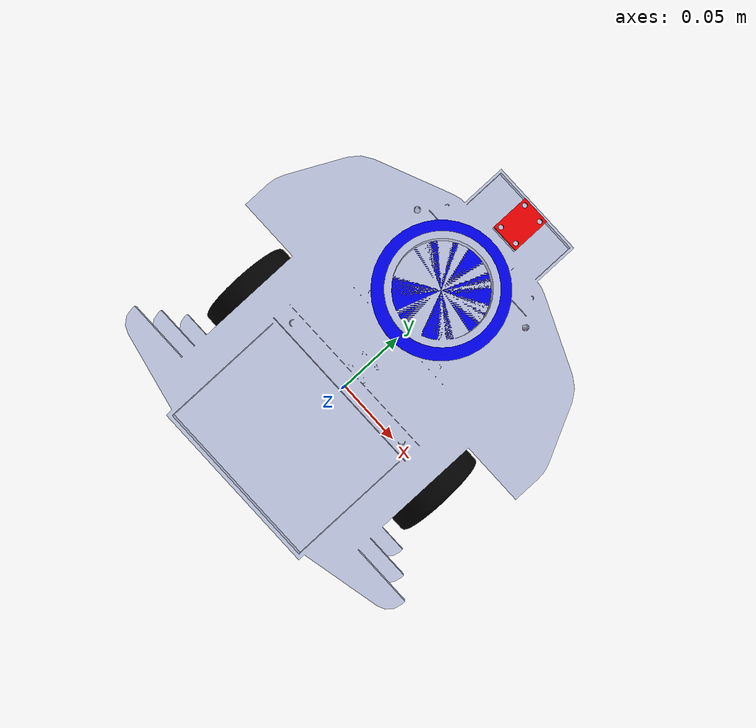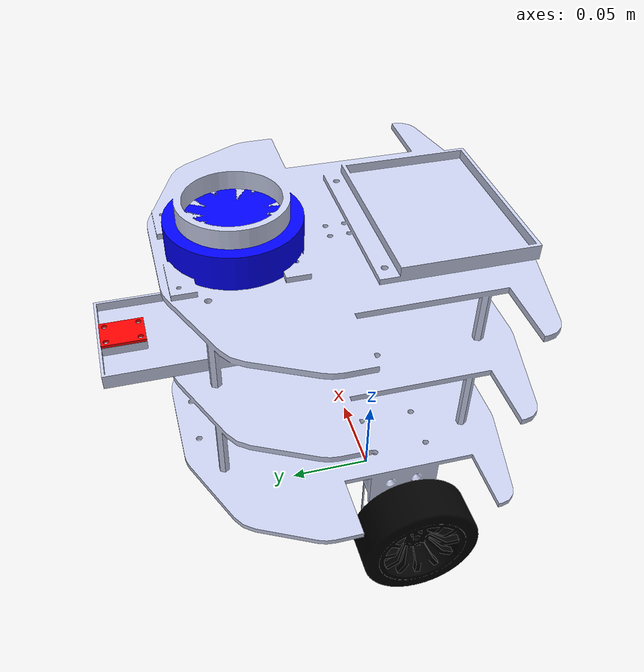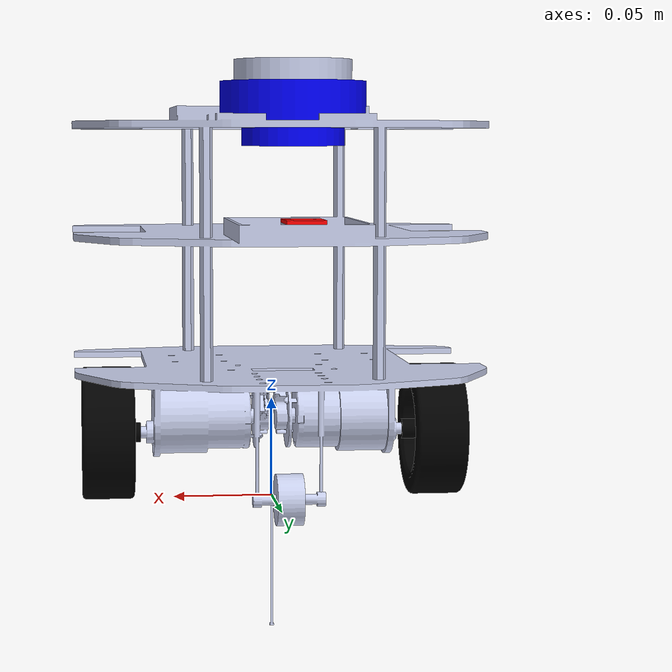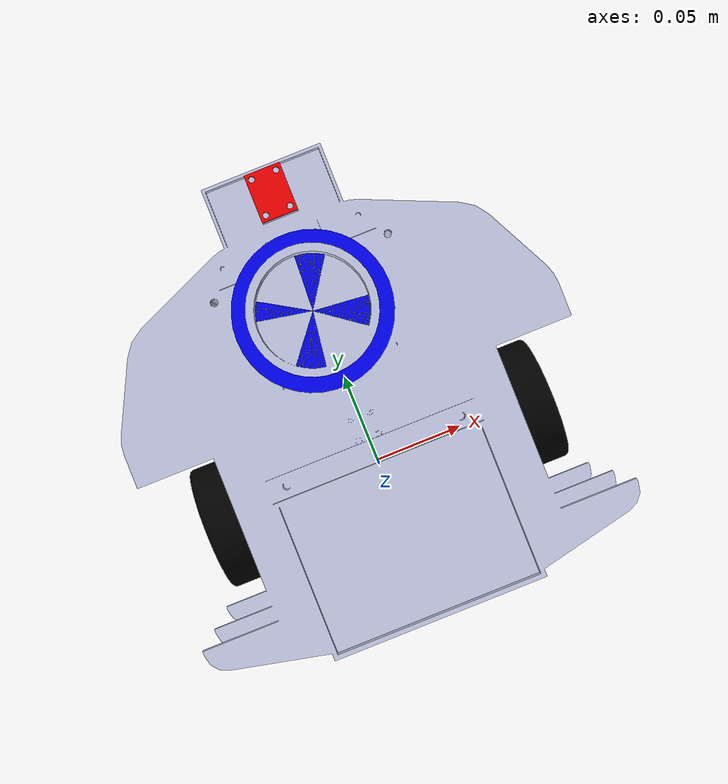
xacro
<?xml version="1.0" encoding="utf-8"?>
<robot
  name="wheel_chair_robot">

  <link
    name="base_footprint">
    <inertial>
      <origin
        xyz="5.41034890439227E-20 2.2865873310991E-18 -0.0353753976311337"
        rpy="0 0 0" />
      <mass
        value="7.09200000000001E-05" />
      <inertia
        ixx="2.93340926097869E-08"
        ixy="-3.85037082822614E-27"
        ixz="3.60459939671844E-27"
        iyy="2.93340926097869E-08"
        iyz="1.84769596144008E-24"
        izz="1.382E-11" />
    </inertial>
    <visual>
      <origin
        xyz="0 0 0"
        rpy="0 0 0" />
      <geometry>
        <mesh
          filename="package://wheel_chair_robot/meshes/base_for_print_link.STL" />
      </geometry>
      <material
        name="">
        <color
          rgba="0.792156862745098 0.819607843137255 0.933333333333333 1" />
      </material>
    </visual>
    <collision>
      <origin
        xyz="0 0 0"
        rpy="0 0 0" />
      <geometry>
        <mesh
          filename="package://wheel_chair_robot/meshes/base_for_print_link.STL" />
      </geometry>
    </collision>
  </link>
  <link
    name="base_link">
    <inertial>
      <origin
        xyz="-0.000183927413758982 0.122740439529099 -0.0288849781882508"
        rpy="0 0 0" />
      <mass
        value="0.471290238762329" />
      <inertia
        ixx="0.000718160491232769"
        ixy="6.15110268523059E-10"
        ixz="-1.16572820178802E-08"
        iyy="0.00133061138183249"
        iyz="1.38556065851481E-07"
        izz="0.000639912786707179" />
    </inertial>
    <visual>
      <origin
        xyz="0 0 0"
        rpy="0 0 0" />
      <geometry>
        <mesh
          filename="package://wheel_chair_robot/meshes/base_link.STL" />
      </geometry>
      <material
        name="">
        <color
          rgba="0.792156862745098 0.819607843137255 0.933333333333333 1" />
      </material>
    </visual>
    <collision>
      <origin
        xyz="0 0 0"
        rpy="0 0 0" />
      <geometry>
        <mesh
          filename="package://wheel_chair_robot/meshes/base_link.STL" />
      </geometry>
    </collision>
  </link>
  <joint
    name="base_joint"
    type="fixed">
    <origin
      xyz="0 0 0"
      rpy="0 0 0" />
    <parent
      link="base_footprint" />
    <child
      link="base_link" />
    <axis
      xyz="0 0 0" />
  </joint>
  <link
    name="wheel_L_link">
    <inertial>
      <origin
        xyz="-0.016617 -8.7963E-12 -7.3698E-07"
        rpy="0 0 0" />
      <mass
        value="0.053158" />
      <inertia
        ixx="4.0958E-05"
        ixy="3.054E-15"
        ixz="2.443E-10"
        iyy="2.3293E-05"
        iyz="5.1359E-16"
        izz="2.3293E-05" />
    </inertial>
    <visual>
      <origin
        xyz="0 0 0"
        rpy="0 0 0" />
      <geometry>
        <mesh
          filename="package://wheel_chair_robot/meshes/wheel_L_link.STL" />
      </geometry>
      <material
        name="">
        <color
          rgba="0 0 0 1" />
      </material>
    </visual>
    <collision>
      <origin
        xyz="0 0 0"
        rpy="0 0 0" />
      <geometry>
        <mesh
          filename="package://wheel_chair_robot/meshes/wheel_L_link.STL" />
      </geometry>
    </collision>
  </link>
  <joint
    name="wheel_L_joint"
    type="continuous">
    <origin
      xyz="-0.0669 0 0.033497"
      rpy="3.1416 0 0" />
    <parent
      link="base_link" />
    <child
      link="wheel_L_link" />
    <axis
      xyz="1 0 0" />
  </joint>
  <link
    name="wheel_R_link">
    <inertial>
      <origin
        xyz="-0.016617 -8.7964E-12 -7.3698E-07"
        rpy="0 0 0" />
      <mass
        value="0.053158" />
      <inertia
        ixx="4.0958E-05"
        ixy="3.054E-15"
        ixz="2.443E-10"
        iyy="2.3293E-05"
        iyz="5.1359E-16"
        izz="2.3293E-05" />
    </inertial>
    <visual>
      <origin
        xyz="0 0 0"
        rpy="0 0 0" />
      <geometry>
        <mesh
          filename="package://wheel_chair_robot/meshes/wheel_R_link.STL" />
      </geometry>
      <material
        name="">
        <color
          rgba="0 0 0 1" />
      </material>
    </visual>
    <collision>
      <origin
        xyz="0 0 0"
        rpy="0 0 0" />
      <geometry>
        <mesh
          filename="package://wheel_chair_robot/meshes/wheel_R_link.STL" />
      </geometry>
    </collision>
  </link>
  <joint
    name="wheel_R_joint"
    type="continuous">
    <origin
      xyz="0.0669 0 0.033497"
      rpy="1.5708 0 3.1416" />
    <parent
      link="base_link" />
    <child
      link="wheel_R_link" />
    <axis
      xyz="1 0 0" />
  </joint>
  <link
    name="lidar_link">
    <inertial>
      <origin
        xyz="-4.3368E-19 0 0.016956"
        rpy="0 0 0" />
      <mass
        value="0.090366" />
      <inertia
        ixx="2.9262E-05"
        ixy="-9.893E-38"
        ixz="-2.6866E-21"
        iyy="2.9262E-05"
        iyz="3.4542E-21"
        izz="4.6984E-05" />
    </inertial>
    <visual>
      <origin
        xyz="0 0 0"
        rpy="0 0 0" />
      <geometry>
        <mesh
          filename="package://wheel_chair_robot/meshes/lidar_link.STL" />
      </geometry>
      <material
        name="">
        <color
          rgba="0 0 1 1" />
      </material>
    </visual>
    <collision>
      <origin
        xyz="0 0 0"
        rpy="0 0 0" />
      <geometry>
        <mesh
          filename="package://wheel_chair_robot/meshes/lidar_link.STL" />
      </geometry>
    </collision>
  </link>
  <joint
    name="lidar_joint"
    type="fixed">
    <origin
      xyz="-0.002 0.079323 0.20826"
      rpy="0 0 0" />
    <parent
      link="base_link" />
    <child
      link="lidar_link" />
    <axis
      xyz="0 0 1" />
  </joint>
  <link
    name="imu_link">
    <inertial>
      <origin
        xyz="-2.6256E-17 0 0.000865"
        rpy="0 0 0" />
      <mass
        value="0.00066052" />
      <inertia
        ixx="2.8402E-08"
        ixy="4.3419E-24"
        ixz="5.2242E-25"
        iyy="1.6689E-08"
        iyz="-5.5152E-26"
        izz="4.4761E-08" />
    </inertial>
    <visual>
      <origin
        xyz="0 0 0"
        rpy="0 0 0" />
      <geometry>
        <mesh
          filename="package://wheel_chair_robot/meshes/imu_link.STL" />
      </geometry>
      <material
        name="">
        <color
          rgba="1 0 0 1" />
      </material>
    </visual>
    <collision>
      <origin
        xyz="0 0 0"
        rpy="0 0 0" />
      <geometry>
        <mesh
          filename="package://wheel_chair_robot/meshes/imu_link.STL" />
      </geometry>
    </collision>
  </link>
  <joint
    name="imu_joint"
    type="fixed">
    <origin
      xyz="0 0.14042 0.14476"
      rpy="0 0 0" />
    <parent
      link="base_link" />
    <child
      link="imu_link" />
    <axis
      xyz="0 0 0" />
  </joint>
  <link
    name="caster_link">
    <inertial>
      <origin
        xyz="-1.38777878078145E-17 1.73472347597681E-18 -2.36309788418562E-16"
        rpy="0 0 0" />
      <mass
        value="0.00573786372737865" />
      <inertia
        ixx="3.01346626020544E-07"
        ixy="2.97608581872277E-42"
        ixz="1.83836420325763E-22"
        iyy="3.01346626020544E-07"
        iyz="1.95301445843342E-39"
        izz="4.48449911942938E-07" />
    </inertial>
    <visual>
      <origin
        xyz="0 0 0"
        rpy="0 0 0" />
      <geometry>
        <mesh
          filename="package://wheel_chair_robot/meshes/caster_link.STL" />
      </geometry>
      <material
        name="">
        <color
          rgba="0.792156862745098 0.819607843137255 0.933333333333333 1" />
      </material>
    </visual>
    <collision>
      <origin
        xyz="0 0 0"
        rpy="0 0 0" />
      <geometry>
        <mesh
          filename="package://wheel_chair_robot/meshes/caster_link.STL" />
      </geometry>
    </collision>
  </link>
  <joint
    name="caster_joint"
    type="fixed">
    <origin
      xyz="0 0.082473 0.01224"
      rpy="1.5708 0 1.5708" />
    <parent
      link="base_link" />
    <child
      link="caster_link" />
    <axis
      xyz="0 0 1" />
  </joint>
</robot>
